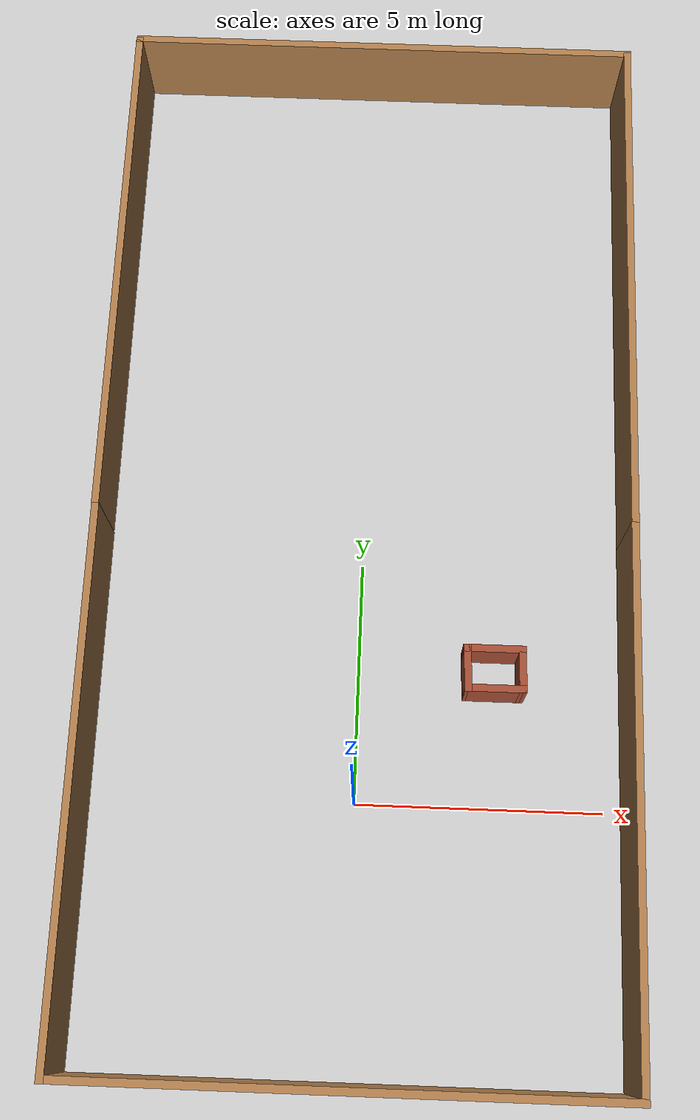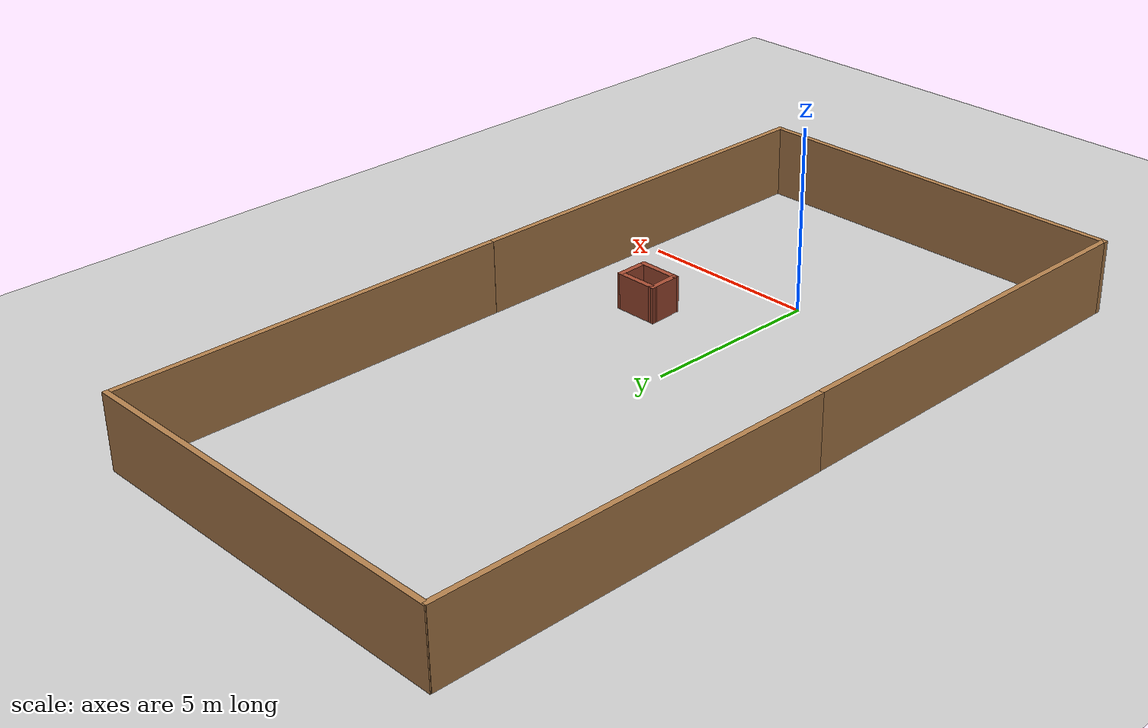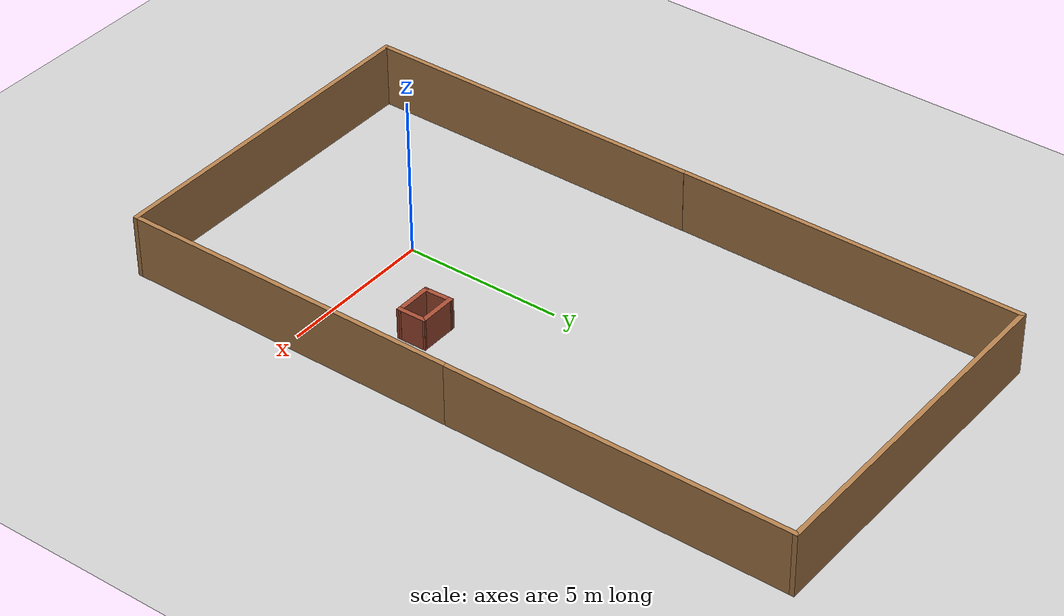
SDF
<sdf version="1.7">
 <world name="default">
  <light name="sun" type="directional">
   <pose>0 0 10 0 -0 0</pose>
   <diffuse>0.8 0.8 0.8 1</diffuse>
   <specular>0.1 0.1 0.1 1</specular>
   <attenuation>
    <range>1000</range>
    <constant>0.9</constant>
    <linear>0.01</linear>
    <quadratic>0.001</quadratic>
   </attenuation>
   <direction>-0.5 0.5 -1</direction>
   <spot><inner_angle>0</inner_angle><outer_angle>0</outer_angle><falloff>0</falloff></spot>
  </light>
  <model name="ground_plane">
   <static>1</static>
   <link name="link">
    <collision name="collision">
     <geometry><plane><normal>0 0 1</normal><size>100 100</size></plane></geometry>
     <surface><friction><ode><mu>100</mu><mu2>50</mu2></ode></friction></surface>
    </collision>
    <visual name="visual">
     <cast_shadows>0</cast_shadows>
     <geometry><plane><normal>0 0 1</normal><size>100 100</size></plane></geometry>
     <material>
      <script><uri>file://media/materials/scripts/gazebo.material</uri><name>Gazebo/Grey</name></script>
     </material>
    </visual>
   </link>
  </model>
  <gravity>0 0 -9.8</gravity>
  <magnetic_field>6e-06 2.3e-05 -4.2e-05</magnetic_field>
  <atmosphere type="adiabatic"/>
  <physics name="default_physics" default="0" type="ode">
   <max_step_size>0.001</max_step_size>
   <real_time_factor>1</real_time_factor>
   <real_time_update_rate>1000</real_time_update_rate>
  </physics>
  <scene><ambient>0.4 0.4 0.4 1</ambient><background>0.7 0.7 0.7 1</background><shadows>1</shadows></scene>
  <spherical_coordinates>
   <surface_model>EARTH_WGS84</surface_model>
   <latitude_deg>0</latitude_deg>
   <longitude_deg>0</longitude_deg>
   <elevation>0</elevation>
   <heading_deg>0</heading_deg>
  </spherical_coordinates>
  <model name="world_new">
   <link name="Wall_15">
    <pose>2.724 3.029 0 0 -0 0</pose>
    <visual name="Wall_15_Visual">
     <pose>0 0 0.5 0 -0 0</pose>
     <geometry><box><size>1.2678 0.15 1</size></box></geometry>
     <material>
      <script><uri>file://media/materials/scripts/gazebo.material</uri><name>Gazebo/Bricks</name></script>
      <ambient>1 1 1 1</ambient>
      <diffuse>1 1 1 1</diffuse>
      <specular>0.2 0.2 0.2 1</specular>
      <emissive>0 0 0 1</emissive>
      <shader type="pixel"/>
     </material>
     <meta><layer>0</layer></meta>
    </visual>
    <collision name="Wall_15_Collision">
     <pose>0 0 0.5 0 -0 0</pose>
     <geometry><box><size>1.2678 0.15 1</size></box></geometry>
     <surface>
      <friction>
       <ode><mu>1</mu><mu2>1</mu2><fdir1>0 0 0</fdir1><slip1>0</slip1><slip2>0</slip2></ode>
       <torsional>
        <coefficient>1</coefficient>
        <patch_radius>0</patch_radius>
        <surface_radius>0</surface_radius>
        <use_patch_radius>1</use_patch_radius>
        <ode><slip>0</slip></ode>
       </torsional>
      </friction>
      <bounce><restitution_coefficient>0</restitution_coefficient><threshold>1e+06</threshold></bounce>
      <contact>
       <collide_without_contact>0</collide_without_contact>
       <collide_without_contact_bitmask>1</collide_without_contact_bitmask>
       <collide_bitmask>1</collide_bitmask>
       <ode>
        <soft_cfm>0</soft_cfm>
        <soft_erp>0.2</soft_erp>
        <kp>1e+13</kp>
        <kd>1</kd>
        <max_vel>0.01</max_vel>
        <min_depth>0</min_depth>
       </ode>
       <bullet>
        <split_impulse>1</split_impulse>
        <split_impulse_penetration_threshold>-0.01</split_impulse_penetration_threshold>
        <soft_cfm>0</soft_cfm>
        <soft_erp>0.2</soft_erp>
        <kp>1e+13</kp>
        <kd>1</kd>
       </bullet>
      </contact>
     </surface>
    </collision>
   </link>
   <link name="Wall_16">
    <pose>3.2915 2.6215 0 0 0 -1.54994</pose>
    <visual name="Wall_16_Visual">
     <pose>0 0 0.5 0 -0 0</pose>
     <geometry><box><size>0.965005 0.15 1</size></box></geometry>
     <material>
      <script><uri>file://media/materials/scripts/gazebo.material</uri><name>Gazebo/Bricks</name></script>
      <ambient>1 1 1 1</ambient>
      <diffuse>1 1 1 1</diffuse>
      <specular>0.2 0.2 0.2 1</specular>
      <emissive>0 0 0 1</emissive>
      <shader type="pixel"/>
     </material>
     <meta><layer>0</layer></meta>
    </visual>
    <collision name="Wall_16_Collision">
     <pose>0 0 0.5 0 -0 0</pose>
     <geometry><box><size>0.965005 0.15 1</size></box></geometry>
     <surface>
      <friction>
       <ode><mu>1</mu><mu2>1</mu2><fdir1>0 0 0</fdir1><slip1>0</slip1><slip2>0</slip2></ode>
       <torsional>
        <coefficient>1</coefficient>
        <patch_radius>0</patch_radius>
        <surface_radius>0</surface_radius>
        <use_patch_radius>1</use_patch_radius>
        <ode><slip>0</slip></ode>
       </torsional>
      </friction>
      <bounce><restitution_coefficient>0</restitution_coefficient><threshold>1e+06</threshold></bounce>
      <contact>
       <collide_without_contact>0</collide_without_contact>
       <collide_without_contact_bitmask>1</collide_without_contact_bitmask>
       <collide_bitmask>1</collide_bitmask>
       <ode>
        <soft_cfm>0</soft_cfm>
        <soft_erp>0.2</soft_erp>
        <kp>1e+13</kp>
        <kd>1</kd>
        <max_vel>0.01</max_vel>
        <min_depth>0</min_depth>
       </ode>
       <bullet>
        <split_impulse>1</split_impulse>
        <split_impulse_penetration_threshold>-0.01</split_impulse_penetration_threshold>
        <soft_cfm>0</soft_cfm>
        <soft_erp>0.2</soft_erp>
        <kp>1e+13</kp>
        <kd>1</kd>
       </bullet>
      </contact>
     </surface>
    </collision>
   </link>
   <link name="Wall_17">
    <pose>2.75 2.214 0 0 -0 3.14159</pose>
    <visual name="Wall_17_Visual">
     <pose>0 0 0.5 0 -0 0</pose>
     <geometry><box><size>1.25 0.15 1</size></box></geometry>
     <material>
      <script><uri>file://media/materials/scripts/gazebo.material</uri><name>Gazebo/Bricks</name></script>
      <ambient>1 1 1 1</ambient>
      <diffuse>1 1 1 1</diffuse>
      <specular>0.2 0.2 0.2 1</specular>
      <emissive>0 0 0 1</emissive>
      <shader type="pixel"/>
     </material>
     <meta><layer>0</layer></meta>
    </visual>
    <collision name="Wall_17_Collision">
     <pose>0 0 0.5 0 -0 0</pose>
     <geometry><box><size>1.25 0.15 1</size></box></geometry>
     <surface>
      <friction>
       <ode><mu>1</mu><mu2>1</mu2><fdir1>0 0 0</fdir1><slip1>0</slip1><slip2>0</slip2></ode>
       <torsional>
        <coefficient>1</coefficient>
        <patch_radius>0</patch_radius>
        <surface_radius>0</surface_radius>
        <use_patch_radius>1</use_patch_radius>
        <ode><slip>0</slip></ode>
       </torsional>
      </friction>
      <bounce><restitution_coefficient>0</restitution_coefficient><threshold>1e+06</threshold></bounce>
      <contact>
       <collide_without_contact>0</collide_without_contact>
       <collide_without_contact_bitmask>1</collide_without_contact_bitmask>
       <collide_bitmask>1</collide_bitmask>
       <ode>
        <soft_cfm>0</soft_cfm>
        <soft_erp>0.2</soft_erp>
        <kp>1e+13</kp>
        <kd>1</kd>
        <max_vel>0.01</max_vel>
        <min_depth>0</min_depth>
       </ode>
       <bullet>
        <split_impulse>1</split_impulse>
        <split_impulse_penetration_threshold>-0.01</split_impulse_penetration_threshold>
        <soft_cfm>0</soft_cfm>
        <soft_erp>0.2</soft_erp>
        <kp>1e+13</kp>
        <kd>1</kd>
       </bullet>
      </contact>
     </surface>
    </collision>
   </link>
   <link name="Wall_18">
    <pose>2.1825 2.6215 0 0 -0 1.61372</pose>
    <visual name="Wall_18_Visual">
     <pose>0 0 0.5 0 -0 0</pose>
     <geometry><box><size>0.965005 0.15 1</size></box></geometry>
     <material>
      <script><uri>file://media/materials/scripts/gazebo.material</uri><name>Gazebo/Bricks</name></script>
      <ambient>1 1 1 1</ambient>
      <diffuse>1 1 1 1</diffuse>
      <specular>0.2 0.2 0.2 1</specular>
      <emissive>0 0 0 1</emissive>
      <shader type="pixel"/>
     </material>
     <meta><layer>0</layer></meta>
    </visual>
    <collision name="Wall_18_Collision">
     <pose>0 0 0.5 0 -0 0</pose>
     <geometry><box><size>0.965005 0.15 1</size></box></geometry>
     <surface>
      <friction>
       <ode><mu>1</mu><mu2>1</mu2><fdir1>0 0 0</fdir1><slip1>0</slip1><slip2>0</slip2></ode>
       <torsional>
        <coefficient>1</coefficient>
        <patch_radius>0</patch_radius>
        <surface_radius>0</surface_radius>
        <use_patch_radius>1</use_patch_radius>
        <ode><slip>0</slip></ode>
       </torsional>
      </friction>
      <bounce><restitution_coefficient>0</restitution_coefficient><threshold>1e+06</threshold></bounce>
      <contact>
       <collide_without_contact>0</collide_without_contact>
       <collide_without_contact_bitmask>1</collide_without_contact_bitmask>
       <collide_bitmask>1</collide_bitmask>
       <ode>
        <soft_cfm>0</soft_cfm>
        <soft_erp>0.2</soft_erp>
        <kp>1e+13</kp>
        <kd>1</kd>
        <max_vel>0.01</max_vel>
        <min_depth>0</min_depth>
       </ode>
       <bullet>
        <split_impulse>1</split_impulse>
        <split_impulse_penetration_threshold>-0.01</split_impulse_penetration_threshold>
        <soft_cfm>0</soft_cfm>
        <soft_erp>0.2</soft_erp>
        <kp>1e+13</kp>
        <kd>1</kd>
       </bullet>
      </contact>
     </surface>
    </collision>
   </link>
   <link name="Wall_7">
    <pose>5.425 0 0 0 0 -1.5708</pose>
    <visual name="Wall_7_Visual">
     <pose>0 0 1 0 -0 0</pose>
     <geometry><box><size>11 0.15 2</size></box></geometry>
     <material>
      <script><uri>file://media/materials/scripts/gazebo.material</uri><name>Gazebo/Wood</name></script>
      <ambient>1 1 1 1</ambient>
      <diffuse>1 1 1 1</diffuse>
      <specular>0.2 0.2 0.2 1</specular>
      <emissive>0 0 0 1</emissive>
      <shader type="pixel"/>
     </material>
     <meta><layer>0</layer></meta>
    </visual>
    <collision name="Wall_7_Collision">
     <pose>0 0 1 0 -0 0</pose>
     <geometry><box><size>11 0.15 2</size></box></geometry>
     <surface>
      <friction>
       <ode><mu>1</mu><mu2>1</mu2><fdir1>0 0 0</fdir1><slip1>0</slip1><slip2>0</slip2></ode>
       <torsional>
        <coefficient>1</coefficient>
        <patch_radius>0</patch_radius>
        <surface_radius>0</surface_radius>
        <use_patch_radius>1</use_patch_radius>
        <ode><slip>0</slip></ode>
       </torsional>
      </friction>
      <bounce><restitution_coefficient>0</restitution_coefficient><threshold>1e+06</threshold></bounce>
      <contact>
       <collide_without_contact>0</collide_without_contact>
       <collide_without_contact_bitmask>1</collide_without_contact_bitmask>
       <collide_bitmask>1</collide_bitmask>
       <ode>
        <soft_cfm>0</soft_cfm>
        <soft_erp>0.2</soft_erp>
        <kp>1e+13</kp>
        <kd>1</kd>
        <max_vel>0.01</max_vel>
        <min_depth>0</min_depth>
       </ode>
       <bullet>
        <split_impulse>1</split_impulse>
        <split_impulse_penetration_threshold>-0.01</split_impulse_penetration_threshold>
        <soft_cfm>0</soft_cfm>
        <soft_erp>0.2</soft_erp>
        <kp>1e+13</kp>
        <kd>1</kd>
       </bullet>
      </contact>
     </surface>
    </collision>
   </link>
   <link name="Wall_8">
    <pose>0 -5.425 0 0 -0 3.14159</pose>
    <visual name="Wall_8_Visual">
     <pose>0 0 1 0 -0 0</pose>
     <geometry><box><size>11 0.15 2</size></box></geometry>
     <material>
      <script><uri>file://media/materials/scripts/gazebo.material</uri><name>Gazebo/Wood</name></script>
      <ambient>1 1 1 1</ambient>
      <diffuse>1 1 1 1</diffuse>
      <specular>0.2 0.2 0.2 1</specular>
      <emissive>0 0 0 1</emissive>
      <shader type="pixel"/>
     </material>
     <meta><layer>0</layer></meta>
    </visual>
    <collision name="Wall_8_Collision">
     <pose>0 0 1 0 -0 0</pose>
     <geometry><box><size>11 0.15 2</size></box></geometry>
     <surface>
      <friction>
       <ode><mu>1</mu><mu2>1</mu2><fdir1>0 0 0</fdir1><slip1>0</slip1><slip2>0</slip2></ode>
       <torsional>
        <coefficient>1</coefficient>
        <patch_radius>0</patch_radius>
        <surface_radius>0</surface_radius>
        <use_patch_radius>1</use_patch_radius>
        <ode><slip>0</slip></ode>
       </torsional>
      </friction>
      <bounce><restitution_coefficient>0</restitution_coefficient><threshold>1e+06</threshold></bounce>
      <contact>
       <collide_without_contact>0</collide_without_contact>
       <collide_without_contact_bitmask>1</collide_without_contact_bitmask>
       <collide_bitmask>1</collide_bitmask>
       <ode>
        <soft_cfm>0</soft_cfm>
        <soft_erp>0.2</soft_erp>
        <kp>1e+13</kp>
        <kd>1</kd>
        <max_vel>0.01</max_vel>
        <min_depth>0</min_depth>
       </ode>
       <bullet>
        <split_impulse>1</split_impulse>
        <split_impulse_penetration_threshold>-0.01</split_impulse_penetration_threshold>
        <soft_cfm>0</soft_cfm>
        <soft_erp>0.2</soft_erp>
        <kp>1e+13</kp>
        <kd>1</kd>
       </bullet>
      </contact>
     </surface>
    </collision>
   </link>
   <link name="Wall_8_clone">
    <pose>0.005212 16.4497 0 0 -0 3.14159</pose>
    <visual name="Wall_8_Visual">
     <pose>0 0 1 0 -0 0</pose>
     <geometry><box><size>11 0.15 2</size></box></geometry>
     <material>
      <script><uri>file://media/materials/scripts/gazebo.material</uri><name>Gazebo/Wood</name></script>
      <ambient>1 1 1 1</ambient>
      <diffuse>1 1 1 1</diffuse>
      <specular>0.2 0.2 0.2 1</specular>
      <emissive>0 0 0 1</emissive>
      <shader type="pixel"/>
     </material>
     <meta><layer>0</layer></meta>
    </visual>
    <collision name="Wall_8_Collision">
     <pose>0 0 1 0 -0 0</pose>
     <geometry><box><size>11 0.15 2</size></box></geometry>
     <surface>
      <friction>
       <ode><mu>1</mu><mu2>1</mu2><fdir1>0 0 0</fdir1><slip1>0</slip1><slip2>0</slip2></ode>
       <torsional>
        <coefficient>1</coefficient>
        <patch_radius>0</patch_radius>
        <surface_radius>0</surface_radius>
        <use_patch_radius>1</use_patch_radius>
        <ode><slip>0</slip></ode>
       </torsional>
      </friction>
      <bounce><restitution_coefficient>0</restitution_coefficient><threshold>1e+06</threshold></bounce>
      <contact>
       <collide_without_contact>0</collide_without_contact>
       <collide_without_contact_bitmask>1</collide_without_contact_bitmask>
       <collide_bitmask>1</collide_bitmask>
       <ode>
        <soft_cfm>0</soft_cfm>
        <soft_erp>0.2</soft_erp>
        <kp>1e+13</kp>
        <kd>1</kd>
        <max_vel>0.01</max_vel>
        <min_depth>0</min_depth>
       </ode>
       <bullet>
        <split_impulse>1</split_impulse>
        <split_impulse_penetration_threshold>-0.01</split_impulse_penetration_threshold>
        <soft_cfm>0</soft_cfm>
        <soft_erp>0.2</soft_erp>
        <kp>1e+13</kp>
        <kd>1</kd>
       </bullet>
      </contact>
     </surface>
    </collision>
   </link>
   <link name="Wall_9">
    <pose>-5.425 0 0 0 -0 1.5708</pose>
    <visual name="Wall_9_Visual">
     <pose>0 0 1 0 -0 0</pose>
     <geometry><box><size>11 0.15 2</size></box></geometry>
     <material>
      <script><uri>file://media/materials/scripts/gazebo.material</uri><name>Gazebo/Wood</name></script>
      <ambient>1 1 1 1</ambient>
      <diffuse>1 1 1 1</diffuse>
      <specular>0.2 0.2 0.2 1</specular>
      <emissive>0 0 0 1</emissive>
      <shader type="pixel"/>
     </material>
     <meta><layer>0</layer></meta>
    </visual>
    <collision name="Wall_9_Collision">
     <pose>0 0 1 0 -0 0</pose>
     <geometry><box><size>11 0.15 2</size></box></geometry>
     <surface>
      <friction>
       <ode><mu>1</mu><mu2>1</mu2><fdir1>0 0 0</fdir1><slip1>0</slip1><slip2>0</slip2></ode>
       <torsional>
        <coefficient>1</coefficient>
        <patch_radius>0</patch_radius>
        <surface_radius>0</surface_radius>
        <use_patch_radius>1</use_patch_radius>
        <ode><slip>0</slip></ode>
       </torsional>
      </friction>
      <bounce><restitution_coefficient>0</restitution_coefficient><threshold>1e+06</threshold></bounce>
      <contact>
       <collide_without_contact>0</collide_without_contact>
       <collide_without_contact_bitmask>1</collide_without_contact_bitmask>
       <collide_bitmask>1</collide_bitmask>
       <ode>
        <soft_cfm>0</soft_cfm>
        <soft_erp>0.2</soft_erp>
        <kp>1e+13</kp>
        <kd>1</kd>
        <max_vel>0.01</max_vel>
        <min_depth>0</min_depth>
       </ode>
       <bullet>
        <split_impulse>1</split_impulse>
        <split_impulse_penetration_threshold>-0.01</split_impulse_penetration_threshold>
        <soft_cfm>0</soft_cfm>
        <soft_erp>0.2</soft_erp>
        <kp>1e+13</kp>
        <kd>1</kd>
       </bullet>
      </contact>
     </surface>
    </collision>
   </link>
   <link name="Wall_9_clone">
    <pose>-5.43187 10.9934 0 0 -0 1.5708</pose>
    <inertial>
     <mass>1</mass>
     <inertia><ixx>1</ixx><ixy>0</ixy><ixz>0</ixz><iyy>1</iyy><iyz>0</iyz><izz>1</izz></inertia>
    </inertial>
    <visual name="Wall_9_Visual">
     <pose>0 0 1 0 -0 0</pose>
     <geometry><box><size>11 0.15 2</size></box></geometry>
     <material>
      <script><uri>file://media/materials/scripts/gazebo.material</uri><name>Gazebo/Wood</name></script>
      <ambient>1 1 1 1</ambient>
      <diffuse>1 1 1 1</diffuse>
      <specular>0.2 0.2 0.2 1</specular>
      <emissive>0 0 0 1</emissive>
      <shader type="pixel"><normal_map>__default__</normal_map></shader>
     </material>
     <meta><layer>0</layer></meta>
    </visual>
    <collision name="Wall_9_Collision">
     <pose>0 0 1 0 -0 0</pose>
     <geometry><box><size>11 0.15 2</size></box></geometry>
     <surface>
      <friction>
       <ode><mu>1</mu><mu2>1</mu2><fdir1>0 0 0</fdir1><slip1>0</slip1><slip2>0</slip2></ode>
       <torsional>
        <coefficient>1</coefficient>
        <patch_radius>0</patch_radius>
        <surface_radius>0</surface_radius>
        <use_patch_radius>1</use_patch_radius>
        <ode><slip>0</slip></ode>
       </torsional>
      </friction>
      <bounce><restitution_coefficient>0</restitution_coefficient><threshold>1e+06</threshold></bounce>
      <contact>
       <collide_without_contact>0</collide_without_contact>
       <collide_without_contact_bitmask>1</collide_without_contact_bitmask>
       <collide_bitmask>1</collide_bitmask>
       <ode>
        <soft_cfm>0</soft_cfm>
        <soft_erp>0.2</soft_erp>
        <kp>1e+13</kp>
        <kd>1</kd>
        <max_vel>0.01</max_vel>
        <min_depth>0</min_depth>
       </ode>
       <bullet>
        <split_impulse>1</split_impulse>
        <split_impulse_penetration_threshold>-0.01</split_impulse_penetration_threshold>
        <soft_cfm>0</soft_cfm>
        <soft_erp>0.2</soft_erp>
        <kp>1e+13</kp>
        <kd>1</kd>
       </bullet>
      </contact>
     </surface>
    </collision>
   </link>
   <link name="Wall_9_clone_0">
    <pose>5.42819 10.9922 0 0 -0 1.5708</pose>
    <visual name="Wall_9_Visual">
     <pose>0 0 1 0 -0 0</pose>
     <geometry><box><size>11 0.15 2</size></box></geometry>
     <material>
      <script><uri>file://media/materials/scripts/gazebo.material</uri><name>Gazebo/Wood</name></script>
      <ambient>1 1 1 1</ambient>
      <diffuse>1 1 1 1</diffuse>
      <specular>0.2 0.2 0.2 1</specular>
      <emissive>0 0 0 1</emissive>
      <shader type="pixel"/>
     </material>
     <meta><layer>0</layer></meta>
    </visual>
    <collision name="Wall_9_Collision">
     <pose>0 0 1 0 -0 0</pose>
     <geometry><box><size>11 0.15 2</size></box></geometry>
     <surface>
      <friction>
       <ode><mu>1</mu><mu2>1</mu2><fdir1>0 0 0</fdir1><slip1>0</slip1><slip2>0</slip2></ode>
       <torsional>
        <coefficient>1</coefficient>
        <patch_radius>0</patch_radius>
        <surface_radius>0</surface_radius>
        <use_patch_radius>1</use_patch_radius>
        <ode><slip>0</slip></ode>
       </torsional>
      </friction>
      <bounce><restitution_coefficient>0</restitution_coefficient><threshold>1e+06</threshold></bounce>
      <contact>
       <collide_without_contact>0</collide_without_contact>
       <collide_without_contact_bitmask>1</collide_without_contact_bitmask>
       <collide_bitmask>1</collide_bitmask>
       <ode>
        <soft_cfm>0</soft_cfm>
        <soft_erp>0.2</soft_erp>
        <kp>1e+13</kp>
        <kd>1</kd>
        <max_vel>0.01</max_vel>
        <min_depth>0</min_depth>
       </ode>
       <bullet>
        <split_impulse>1</split_impulse>
        <split_impulse_penetration_threshold>-0.01</split_impulse_penetration_threshold>
        <soft_cfm>0</soft_cfm>
        <soft_erp>0.2</soft_erp>
        <kp>1e+13</kp>
        <kd>1</kd>
       </bullet>
      </contact>
     </surface>
    </collision>
   </link>
   <static>1</static>
   <pose>0.008468 0.070003 0 0 -0 0</pose>
  </model>
 </world>
</sdf>
